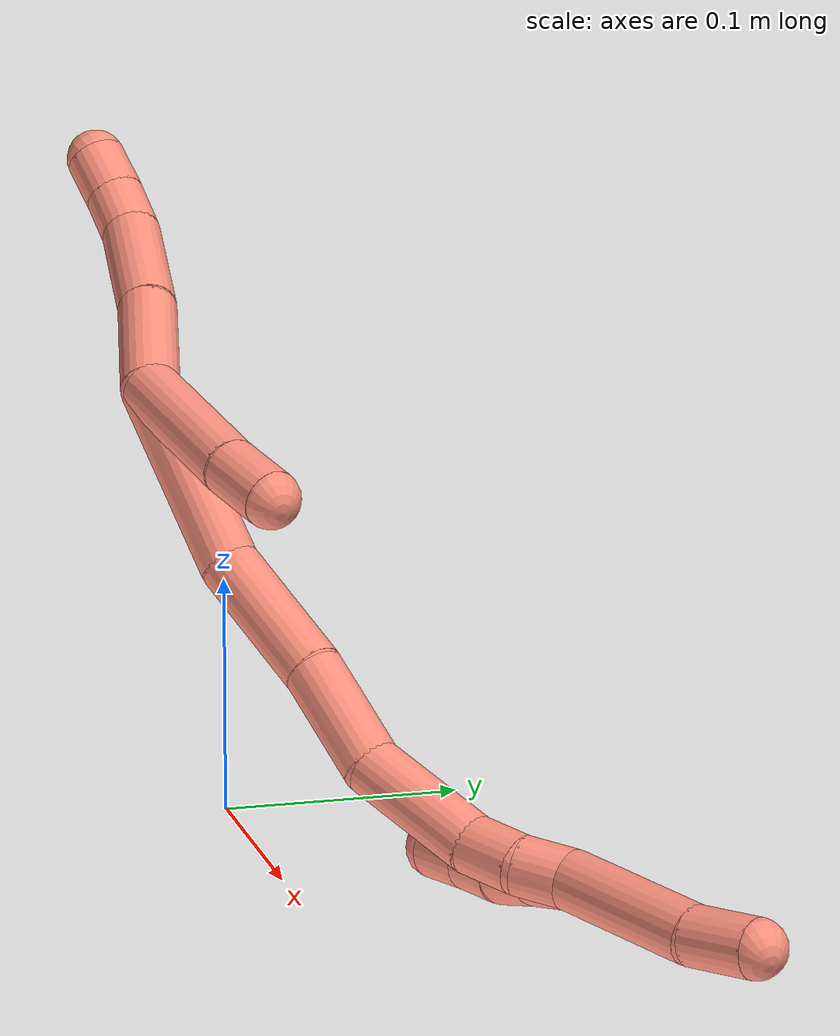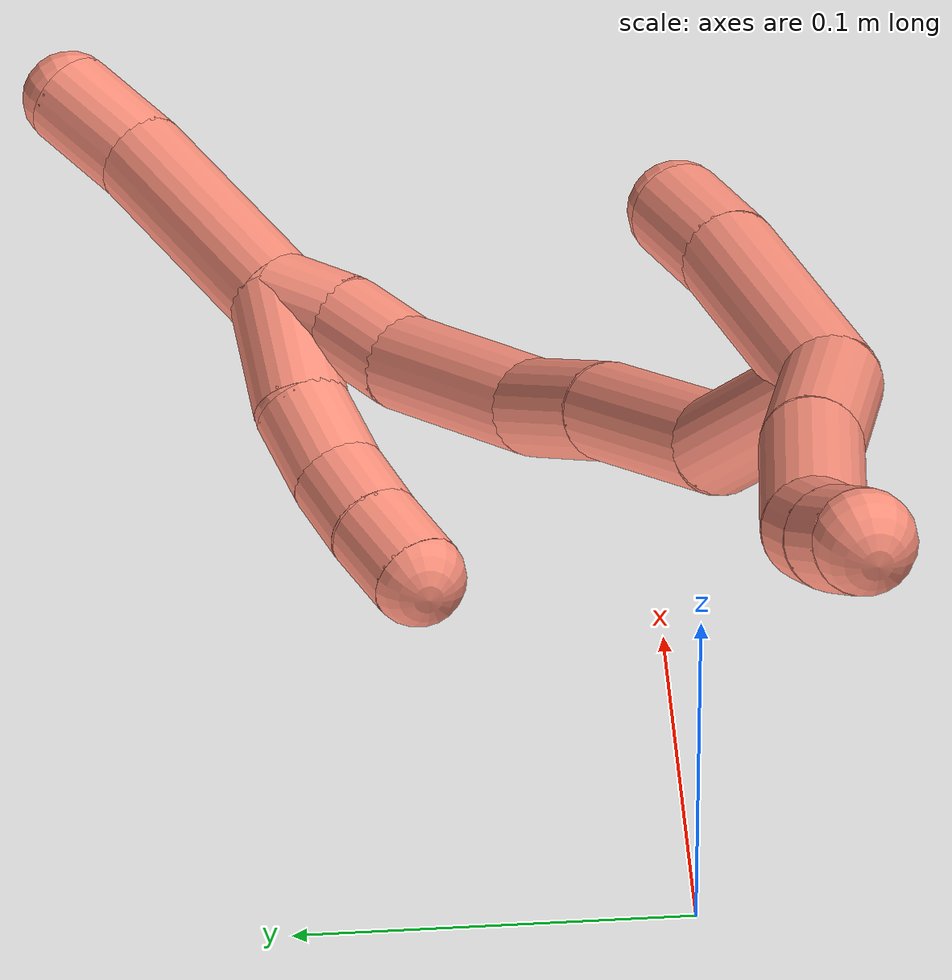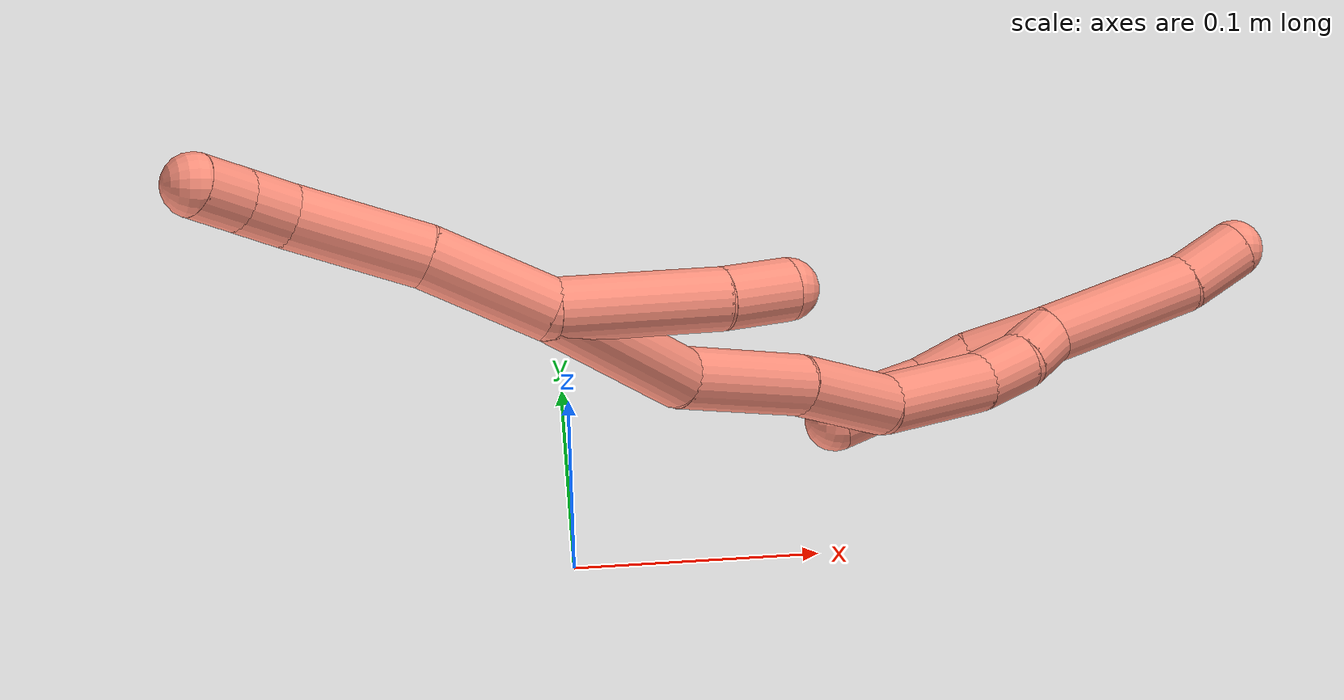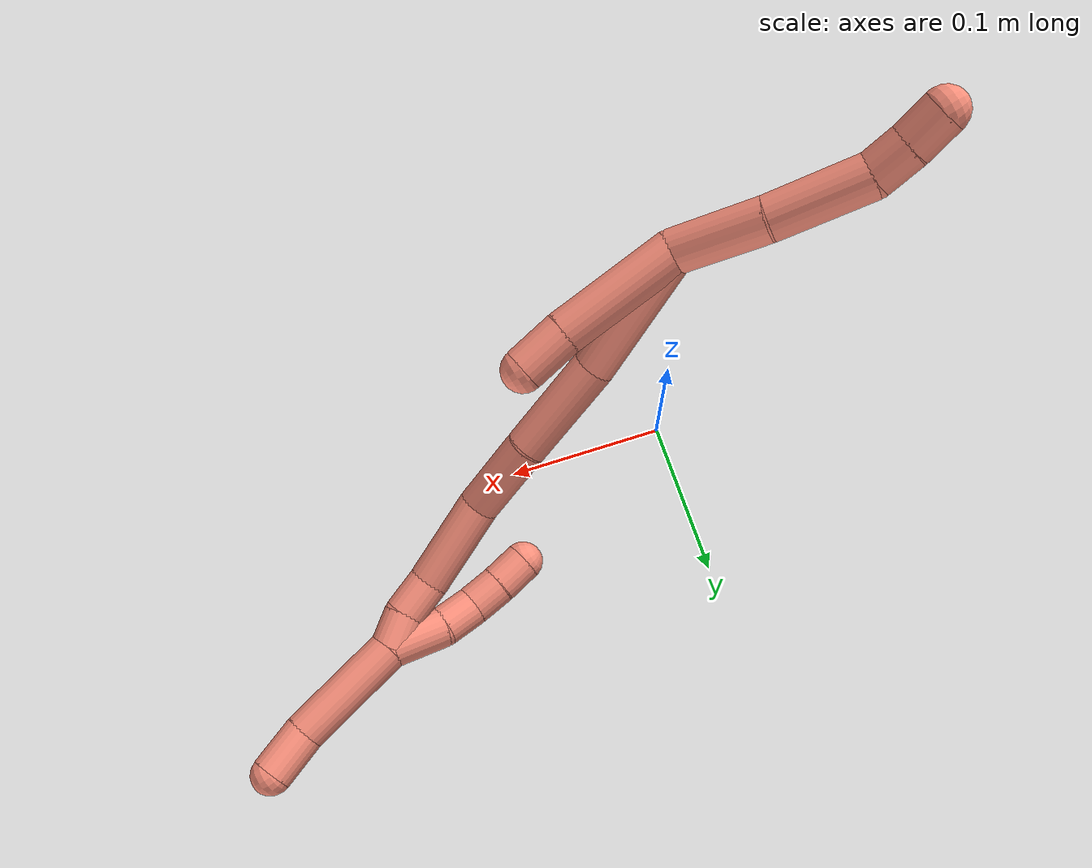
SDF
<sdf version="1.7">
 <world name="default">
  <model name="photoneo_s_sensor">
   <static>1</static>
   <pose>0 0 2 1.57079 1.57079 3.14159</pose>
   <link name="link">
    <inertial><mass>0.1</mass></inertial>
    <sensor name="sensor" type="depth">
     <update_rate>30</update_rate>
     <camera>
      <horizontal_fov>1.22</horizontal_fov>
      <image><width>1920</width><height>1200</height><format>B8G8R8</format></image>
      <clip><near>0.1</near><far>4</far></clip>
      <depth_camera><output>points</output></depth_camera>
     </camera>
     <plugin name="camera_plugin" filename="libgazebo_ros_depth_camera.so">
      <baseline>0.2</baseline>
      <alwaysOn>1</alwaysOn>
      <updateRate>0.0</updateRate>
      <cameraName>camera_ir</cameraName>
      <imageTopicName>/camera/color/image_raw</imageTopicName>
      <cameraInfoTopicName>/camera/color/camera_info</cameraInfoTopicName>
      <depthImageTopicName>/camera/depth/image_raw</depthImageTopicName>
      <depthImageCameraInfoTopicName>/camera/depth/camera_info</depthImageCameraInfoTopicName>
      <pointCloudTopicName>/camera/depth/points</pointCloudTopicName>
      <frameName>fr_optical</frameName>
      <pointCloudCutoff>0.1</pointCloudCutoff>
      <pointCloudCutoffMax>2.0</pointCloudCutoffMax>
      <distortionK1>0</distortionK1>
      <distortionK2>0</distortionK2>
      <distortionK3>0</distortionK3>
      <distortionT1>0</distortionT1>
      <distortionT2>0</distortionT2>
      <CxPrime>0</CxPrime>
      <Cx>0</Cx>
      <Cy>0</Cy>
      <focalLength>0</focalLength>
      <hackBaseline>0</hackBaseline>
     </plugin>
    </sensor>
   </link>
  </model>
  <model name="bin">
   <static>1</static>
   <link name="bottom">
    <collision name="collision-bottom">
     <pose>0 0 -0.01 0 -0 0</pose>
     <geometry><box><size>0.8 0.6 0.02</size></box></geometry>
     <surface>
      <friction><ode><mu>100</mu><mu2>100</mu2></ode></friction>
      <contact><collide_bitmask>65535</collide_bitmask></contact>
     </surface>
    </collision>
   </link>
   <link name="west_wall">
    <collision name="collision-west_wall">
     <pose>-0.41 0 0.1 0 -0 0</pose>
     <geometry><box><size>0.02 0.6 0.2</size></box></geometry>
     <surface>
      <friction><ode><mu>100</mu><mu2>100</mu2></ode></friction>
      <contact><collide_bitmask>65535</collide_bitmask></contact>
     </surface>
    </collision>
   </link>
   <link name="east_wall">
    <collision name="collision-east_wall">
     <pose>0.41 0 0.1 0 -0 0</pose>
     <geometry><box><size>0.02 0.6 0.2</size></box></geometry>
     <surface>
      <friction><ode><mu>100</mu><mu2>100</mu2></ode></friction>
      <contact><collide_bitmask>65535</collide_bitmask></contact>
     </surface>
    </collision>
   </link>
   <link name="south_wall">
    <collision name="collision-south_wall">
     <pose>0 -0.31 0.1 0 -0 0</pose>
     <geometry><box><size>0.8 0.02 0.2</size></box></geometry>
     <surface>
      <friction><ode><mu>100</mu><mu2>100</mu2></ode></friction>
      <contact><collide_bitmask>65535</collide_bitmask></contact>
     </surface>
    </collision>
   </link>
   <link name="north_wall">
    <collision name="collision-north_wall">
     <pose>0 0.31 0.1 0 -0 0</pose>
     <geometry><box><size>0.8 0.02 0.2</size></box></geometry>
     <surface>
      <friction><ode><mu>100</mu><mu2>100</mu2></ode></friction>
      <contact><collide_bitmask>65535</collide_bitmask></contact>
     </surface>
    </collision>
   </link>
  </model>
  <model name="16">
   <static>0</static>
   <link name="16">
    <collision name="collision-cylinder-e_1_2_8">
     <pose>0.010149 -0.002678 0.024028 0.110988 0.397468 0.022374</pose>
     <geometry><cylinder><radius>0.0125</radius><length>0.052441</length></cylinder></geometry>
     <surface>
      <friction><ode><mu>1.16</mu><mu2>1.16</mu2><slip1>0</slip1><slip2>0</slip2></ode></friction>
      <contact><ode><kp>1e+06</kp><kd>1</kd><max_vel>0</max_vel><min_depth>0.001</min_depth></ode></contact>
     </surface>
    </collision>
    <visual name="visual-cylinder-e_1_2_8">
     <pose>0.010149 -0.002678 0.024028 0.110988 0.397468 0.022374</pose>
     <geometry><cylinder><radius>0.0125</radius><length>0.052441</length></cylinder></geometry>
     <material><ambient>1 0.576471 0.494118 1</ambient></material>
    </visual>
    <collision name="collision-cylinder-e_2_8_9">
     <pose>0.027978 -0.007219 0.0742 0.071135 0.28501 0.010211</pose>
     <geometry><cylinder><radius>0.0125</radius><length>0.054626</length></cylinder></geometry>
     <surface>
      <friction><ode><mu>1.16</mu><mu2>1.16</mu2><slip1>0</slip1><slip2>0</slip2></ode></friction>
      <contact><ode><kp>1e+06</kp><kd>1</kd><max_vel>0</max_vel><min_depth>0.001</min_depth></ode></contact>
     </surface>
    </collision>
    <visual name="visual-cylinder-e_2_8_9">
     <pose>0.027978 -0.007219 0.0742 0.071135 0.28501 0.010211</pose>
     <geometry><cylinder><radius>0.0125</radius><length>0.054626</length></cylinder></geometry>
     <material><ambient>1 0.576471 0.494118 1</ambient></material>
    </visual>
    <collision name="collision-cylinder-e_3_9_10">
     <pose>0.036936 -0.012905 0.110365 0.364519 0.118611 0.021885</pose>
     <geometry><cylinder><radius>0.0125</radius><length>0.021601</length></cylinder></geometry>
     <surface>
      <friction><ode><mu>1.16</mu><mu2>1.16</mu2><slip1>0</slip1><slip2>0</slip2></ode></friction>
      <contact><ode><kp>1e+06</kp><kd>1</kd><max_vel>0</max_vel><min_depth>0.001</min_depth></ode></contact>
     </surface>
    </collision>
    <visual name="visual-cylinder-e_3_9_10">
     <pose>0.036936 -0.012905 0.110365 0.364519 0.118611 0.021885</pose>
     <geometry><cylinder><radius>0.0125</radius><length>0.021601</length></cylinder></geometry>
     <material><ambient>1 0.576471 0.494118 1</ambient></material>
    </visual>
    <collision name="collision-cylinder-e_4_10_6">
     <pose>0.038804 -0.02132 0.129994 0.445742 0.055299 0.012536</pose>
     <geometry><cylinder><radius>0.0125</radius><length>0.021332</length></cylinder></geometry>
     <surface>
      <friction><ode><mu>1.16</mu><mu2>1.16</mu2><slip1>0</slip1><slip2>0</slip2></ode></friction>
      <contact><ode><kp>1e+06</kp><kd>1</kd><max_vel>0</max_vel><min_depth>0.001</min_depth></ode></contact>
     </surface>
    </collision>
    <visual name="visual-cylinder-e_4_10_6">
     <pose>0.038804 -0.02132 0.129994 0.445742 0.055299 0.012536</pose>
     <geometry><cylinder><radius>0.0125</radius><length>0.021332</length></cylinder></geometry>
     <material><ambient>1 0.576471 0.494118 1</ambient></material>
    </visual>
    <collision name="collision-cylinder-e_1_2_11">
     <pose>0.002824 0.001258 -0.035359 -3.10602 0.079646 -2.30182</pose>
     <geometry><cylinder><radius>0.0125</radius><length>0.070988</length></cylinder></geometry>
     <surface>
      <friction><ode><mu>1.16</mu><mu2>1.16</mu2><slip1>0</slip1><slip2>0</slip2></ode></friction>
      <contact><ode><kp>1e+06</kp><kd>1</kd><max_vel>0</max_vel><min_depth>0.001</min_depth></ode></contact>
     </surface>
    </collision>
    <visual name="visual-cylinder-e_1_2_11">
     <pose>0.002824 0.001258 -0.035359 -3.10602 0.079646 -2.30182</pose>
     <geometry><cylinder><radius>0.0125</radius><length>0.070988</length></cylinder></geometry>
     <material><ambient>1 0.576471 0.494118 1</ambient></material>
    </visual>
    <collision name="collision-cylinder-e_2_11_5">
     <pose>0.008192 0.003591 -0.084959 -3.06629 0.176275 -2.33564</pose>
     <geometry><cylinder><radius>0.0125</radius><length>0.029012</length></cylinder></geometry>
     <surface>
      <friction><ode><mu>1.16</mu><mu2>1.16</mu2><slip1>0</slip1><slip2>0</slip2></ode></friction>
      <contact><ode><kp>1e+06</kp><kd>1</kd><max_vel>0</max_vel><min_depth>0.001</min_depth></ode></contact>
     </surface>
    </collision>
    <visual name="visual-cylinder-e_2_11_5">
     <pose>0.008192 0.003591 -0.084959 -3.06629 0.176275 -2.33564</pose>
     <geometry><cylinder><radius>0.0125</radius><length>0.029012</length></cylinder></geometry>
     <material><ambient>1 0.576471 0.494118 1</ambient></material>
    </visual>
    <collision name="collision-cylinder-e_1_2_12">
     <pose>-0.002001 0.025242 -0.03325 -2.49225 -0.047907 0.14212</pose>
     <geometry><cylinder><radius>0.0125</radius><length>0.083588</length></cylinder></geometry>
     <surface>
      <friction><ode><mu>1.16</mu><mu2>1.16</mu2><slip1>0</slip1><slip2>0</slip2></ode></friction>
      <contact><ode><kp>1e+06</kp><kd>1</kd><max_vel>0</max_vel><min_depth>0.001</min_depth></ode></contact>
     </surface>
    </collision>
    <visual name="visual-cylinder-e_1_2_12">
     <pose>-0.002001 0.025242 -0.03325 -2.49225 -0.047907 0.14212</pose>
     <geometry><cylinder><radius>0.0125</radius><length>0.083588</length></cylinder></geometry>
     <material><ambient>1 0.576471 0.494118 1</ambient></material>
    </visual>
    <collision name="collision-cylinder-e_2_12_13">
     <pose>-0.000546 0.06155 -0.095905 -2.78169 0.109592 -0.585682</pose>
     <geometry><cylinder><radius>0.0125</radius><length>0.063216</length></cylinder></geometry>
     <surface>
      <friction><ode><mu>1.16</mu><mu2>1.16</mu2><slip1>0</slip1><slip2>0</slip2></ode></friction>
      <contact><ode><kp>1e+06</kp><kd>1</kd><max_vel>0</max_vel><min_depth>0.001</min_depth></ode></contact>
     </surface>
    </collision>
    <visual name="visual-cylinder-e_2_12_13">
     <pose>-0.000546 0.06155 -0.095905 -2.78169 0.109592 -0.585682</pose>
     <geometry><cylinder><radius>0.0125</radius><length>0.063216</length></cylinder></geometry>
     <material><ambient>1 0.576471 0.494118 1</ambient></material>
    </visual>
    <collision name="collision-cylinder-e_3_13_14">
     <pose>0.003625 0.083679 -0.147573 -2.68038 0.028707 -0.122128</pose>
     <geometry><cylinder><radius>0.0125</radius><length>0.04974</length></cylinder></geometry>
     <surface>
      <friction><ode><mu>1.16</mu><mu2>1.16</mu2><slip1>0</slip1><slip2>0</slip2></ode></friction>
      <contact><ode><kp>1e+06</kp><kd>1</kd><max_vel>0</max_vel><min_depth>0.001</min_depth></ode></contact>
     </surface>
    </collision>
    <visual name="visual-cylinder-e_3_13_14">
     <pose>0.003625 0.083679 -0.147573 -2.68038 0.028707 -0.122128</pose>
     <geometry><cylinder><radius>0.0125</radius><length>0.04974</length></cylinder></geometry>
     <material><ambient>1 0.576471 0.494118 1</ambient></material>
    </visual>
    <collision name="collision-cylinder-e_4_14_15">
     <pose>0.013147 0.102862 -0.195674 -2.8371 0.314427 -1.60342</pose>
     <geometry><cylinder><radius>0.0125</radius><length>0.056961</length></cylinder></geometry>
     <surface>
      <friction><ode><mu>1.16</mu><mu2>1.16</mu2><slip1>0</slip1><slip2>0</slip2></ode></friction>
      <contact><ode><kp>1e+06</kp><kd>1</kd><max_vel>0</max_vel><min_depth>0.001</min_depth></ode></contact>
     </surface>
    </collision>
    <visual name="visual-cylinder-e_4_14_15">
     <pose>0.013147 0.102862 -0.195674 -2.8371 0.314427 -1.60342</pose>
     <geometry><cylinder><radius>0.0125</radius><length>0.056961</length></cylinder></geometry>
     <material><ambient>1 0.576471 0.494118 1</ambient></material>
    </visual>
    <collision name="collision-cylinder-e_5_15_16">
     <pose>0.027084 0.111651 -0.23267 -3.08171 0.430189 -2.86911</pose>
     <geometry><cylinder><radius>0.0125</radius><length>0.024595</length></cylinder></geometry>
     <surface>
      <friction><ode><mu>1.16</mu><mu2>1.16</mu2><slip1>0</slip1><slip2>0</slip2></ode></friction>
      <contact><ode><kp>1e+06</kp><kd>1</kd><max_vel>0</max_vel><min_depth>0.001</min_depth></ode></contact>
     </surface>
    </collision>
    <visual name="visual-cylinder-e_5_15_16">
     <pose>0.027084 0.111651 -0.23267 -3.08171 0.430189 -2.86911</pose>
     <geometry><cylinder><radius>0.0125</radius><length>0.024595</length></cylinder></geometry>
     <material><ambient>1 0.576471 0.494118 1</ambient></material>
    </visual>
    <collision name="collision-cylinder-e_6_16_1">
     <pose>0.039074 0.113972 -0.252198 -2.94683 0.677291 -2.60046</pose>
     <geometry><cylinder><radius>0.0125</radius><length>0.021899</length></cylinder></geometry>
     <surface>
      <friction><ode><mu>1.16</mu><mu2>1.16</mu2><slip1>0</slip1><slip2>0</slip2></ode></friction>
      <contact><ode><kp>1e+06</kp><kd>1</kd><max_vel>0</max_vel><min_depth>0.001</min_depth></ode></contact>
     </surface>
    </collision>
    <visual name="visual-cylinder-e_6_16_1">
     <pose>0.039074 0.113972 -0.252198 -2.94683 0.677291 -2.60046</pose>
     <geometry><cylinder><radius>0.0125</radius><length>0.021899</length></cylinder></geometry>
     <material><ambient>1 0.576471 0.494118 1</ambient></material>
    </visual>
    <collision name="collision-cylinder-e_1_1_17">
     <pose>0.057025 0.11358 -0.29371 3.08003 0.322332 2.76724</pose>
     <geometry><cylinder><radius>0.0125</radius><length>0.070012</length></cylinder></geometry>
     <surface>
      <friction><ode><mu>1.16</mu><mu2>1.16</mu2><slip1>0</slip1><slip2>0</slip2></ode></friction>
      <contact><ode><kp>1e+06</kp><kd>1</kd><max_vel>0</max_vel><min_depth>0.001</min_depth></ode></contact>
     </surface>
    </collision>
    <visual name="visual-cylinder-e_1_1_17">
     <pose>0.057025 0.11358 -0.29371 3.08003 0.322332 2.76724</pose>
     <geometry><cylinder><radius>0.0125</radius><length>0.070012</length></cylinder></geometry>
     <material><ambient>1 0.576471 0.494118 1</ambient></material>
    </visual>
    <collision name="collision-cylinder-e_2_17_4">
     <pose>0.075561 0.110028 -0.339776 3.02536 0.519729 2.71071</pose>
     <geometry><cylinder><radius>0.0125</radius><length>0.029988</length></cylinder></geometry>
     <surface>
      <friction><ode><mu>1.16</mu><mu2>1.16</mu2><slip1>0</slip1><slip2>0</slip2></ode></friction>
      <contact><ode><kp>1e+06</kp><kd>1</kd><max_vel>0</max_vel><min_depth>0.001</min_depth></ode></contact>
     </surface>
    </collision>
    <visual name="visual-cylinder-e_2_17_4">
     <pose>0.075561 0.110028 -0.339776 3.02536 0.519729 2.71071</pose>
     <geometry><cylinder><radius>0.0125</radius><length>0.029988</length></cylinder></geometry>
     <material><ambient>1 0.576471 0.494118 1</ambient></material>
    </visual>
    <collision name="collision-cylinder-e_1_1_18">
     <pose>0.044123 0.123646 -0.245472 -0.488465 -0.10568 0.026359</pose>
     <geometry><cylinder><radius>0.0125</radius><length>0.034385</length></cylinder></geometry>
     <surface>
      <friction><ode><mu>1.16</mu><mu2>1.16</mu2><slip1>0</slip1><slip2>0</slip2></ode></friction>
      <contact><ode><kp>1e+06</kp><kd>1</kd><max_vel>0</max_vel><min_depth>0.001</min_depth></ode></contact>
     </surface>
    </collision>
    <visual name="visual-cylinder-e_1_1_18">
     <pose>0.044123 0.123646 -0.245472 -0.488465 -0.10568 0.026359</pose>
     <geometry><cylinder><radius>0.0125</radius><length>0.034385</length></cylinder></geometry>
     <material><ambient>1 0.576471 0.494118 1</ambient></material>
    </visual>
    <collision name="collision-cylinder-e_2_18_19">
     <pose>0.038595 0.135987 -0.220398 -0.408482 -0.329202 0.068783</pose>
     <geometry><cylinder><radius>0.0125</radius><length>0.022977</length></cylinder></geometry>
     <surface>
      <friction><ode><mu>1.16</mu><mu2>1.16</mu2><slip1>0</slip1><slip2>0</slip2></ode></friction>
      <contact><ode><kp>1e+06</kp><kd>1</kd><max_vel>0</max_vel><min_depth>0.001</min_depth></ode></contact>
     </surface>
    </collision>
    <visual name="visual-cylinder-e_2_18_19">
     <pose>0.038595 0.135987 -0.220398 -0.408482 -0.329202 0.068783</pose>
     <geometry><cylinder><radius>0.0125</radius><length>0.022977</length></cylinder></geometry>
     <material><ambient>1 0.576471 0.494118 1</ambient></material>
    </visual>
    <collision name="collision-cylinder-e_3_19_20">
     <pose>0.03206 0.141885 -0.200344 -0.155421 -0.269794 0.021136</pose>
     <geometry><cylinder><radius>0.0125</radius><length>0.021164</length></cylinder></geometry>
     <surface>
      <friction><ode><mu>1.16</mu><mu2>1.16</mu2><slip1>0</slip1><slip2>0</slip2></ode></friction>
      <contact><ode><kp>1e+06</kp><kd>1</kd><max_vel>0</max_vel><min_depth>0.001</min_depth></ode></contact>
     </surface>
    </collision>
    <visual name="visual-cylinder-e_3_19_20">
     <pose>0.03206 0.141885 -0.200344 -0.155421 -0.269794 0.021136</pose>
     <geometry><cylinder><radius>0.0125</radius><length>0.021164</length></cylinder></geometry>
     <material><ambient>1 0.576471 0.494118 1</ambient></material>
    </visual>
    <collision name="collision-cylinder-e_4_20_3">
     <pose>0.025624 0.14488 -0.180258 -0.1406 -0.343486 0.024426</pose>
     <geometry><cylinder><radius>0.0125</radius><length>0.021473</length></cylinder></geometry>
     <surface>
      <friction><ode><mu>1.16</mu><mu2>1.16</mu2><slip1>0</slip1><slip2>0</slip2></ode></friction>
      <contact><ode><kp>1e+06</kp><kd>1</kd><max_vel>0</max_vel><min_depth>0.001</min_depth></ode></contact>
     </surface>
    </collision>
    <visual name="visual-cylinder-e_4_20_3">
     <pose>0.025624 0.14488 -0.180258 -0.1406 -0.343486 0.024426</pose>
     <geometry><cylinder><radius>0.0125</radius><length>0.021473</length></cylinder></geometry>
     <material><ambient>1 0.576471 0.494118 1</ambient></material>
    </visual>
    <collision name="collision-sphere-3">
     <pose>0.022008 0.146297 -0.170248 0 -0 0</pose>
     <geometry><sphere><radius>0.0125</radius></sphere></geometry>
     <surface>
      <friction><ode><mu>1.16</mu><mu2>1.16</mu2><slip1>0</slip1><slip2>0</slip2></ode></friction>
      <contact><ode><kp>1e+06</kp><kd>1</kd><max_vel>0</max_vel><min_depth>0.001</min_depth></ode></contact>
     </surface>
    </collision>
    <visual name="visual-sphere-3">
     <pose>0.022008 0.146297 -0.170248 0 -0 0</pose>
     <geometry><sphere><radius>0.0125</radius></sphere></geometry>
     <material><ambient>1 0.576471 0.494118 1</ambient></material>
    </visual>
    <collision name="collision-sphere-20">
     <pose>0.02924 0.143463 -0.190267 0 -0 0</pose>
     <geometry><sphere><radius>0.0125</radius></sphere></geometry>
     <surface>
      <friction><ode><mu>1.16</mu><mu2>1.16</mu2><slip1>0</slip1><slip2>0</slip2></ode></friction>
      <contact><ode><kp>1e+06</kp><kd>1</kd><max_vel>0</max_vel><min_depth>0.001</min_depth></ode></contact>
     </surface>
    </collision>
    <visual name="visual-sphere-20">
     <pose>0.02924 0.143463 -0.190267 0 -0 0</pose>
     <geometry><sphere><radius>0.0125</radius></sphere></geometry>
     <material><ambient>1 0.576471 0.494118 1</ambient></material>
    </visual>
    <collision name="collision-sphere-19">
     <pose>0.034881 0.140306 -0.21042 0 -0 0</pose>
     <geometry><sphere><radius>0.0125</radius></sphere></geometry>
     <surface>
      <friction><ode><mu>1.16</mu><mu2>1.16</mu2><slip1>0</slip1><slip2>0</slip2></ode></friction>
      <contact><ode><kp>1e+06</kp><kd>1</kd><max_vel>0</max_vel><min_depth>0.001</min_depth></ode></contact>
     </surface>
    </collision>
    <visual name="visual-sphere-19">
     <pose>0.034881 0.140306 -0.21042 0 -0 0</pose>
     <geometry><sphere><radius>0.0125</radius></sphere></geometry>
     <material><ambient>1 0.576471 0.494118 1</ambient></material>
    </visual>
    <collision name="collision-sphere-11">
     <pose>0.005648 0.002517 -0.070718 0 -0 0</pose>
     <geometry><sphere><radius>0.0125</radius></sphere></geometry>
     <surface>
      <friction><ode><mu>1.16</mu><mu2>1.16</mu2><slip1>0</slip1><slip2>0</slip2></ode></friction>
      <contact><ode><kp>1e+06</kp><kd>1</kd><max_vel>0</max_vel><min_depth>0.001</min_depth></ode></contact>
     </surface>
    </collision>
    <visual name="visual-sphere-11">
     <pose>0.005648 0.002517 -0.070718 0 -0 0</pose>
     <geometry><sphere><radius>0.0125</radius></sphere></geometry>
     <material><ambient>1 0.576471 0.494118 1</ambient></material>
    </visual>
    <collision name="collision-sphere-6">
     <pose>0.039393 -0.025911 0.139603 0 -0 0</pose>
     <geometry><sphere><radius>0.0125</radius></sphere></geometry>
     <surface>
      <friction><ode><mu>1.16</mu><mu2>1.16</mu2><slip1>0</slip1><slip2>0</slip2></ode></friction>
      <contact><ode><kp>1e+06</kp><kd>1</kd><max_vel>0</max_vel><min_depth>0.001</min_depth></ode></contact>
     </surface>
    </collision>
    <visual name="visual-sphere-6">
     <pose>0.039393 -0.025911 0.139603 0 -0 0</pose>
     <geometry><sphere><radius>0.0125</radius></sphere></geometry>
     <material><ambient>1 0.576471 0.494118 1</ambient></material>
    </visual>
    <collision name="collision-sphere-10">
     <pose>0.038214 -0.016728 0.120385 0 -0 0</pose>
     <geometry><sphere><radius>0.0125</radius></sphere></geometry>
     <surface>
      <friction><ode><mu>1.16</mu><mu2>1.16</mu2><slip1>0</slip1><slip2>0</slip2></ode></friction>
      <contact><ode><kp>1e+06</kp><kd>1</kd><max_vel>0</max_vel><min_depth>0.001</min_depth></ode></contact>
     </surface>
    </collision>
    <visual name="visual-sphere-10">
     <pose>0.038214 -0.016728 0.120385 0 -0 0</pose>
     <geometry><sphere><radius>0.0125</radius></sphere></geometry>
     <material><ambient>1 0.576471 0.494118 1</ambient></material>
    </visual>
    <collision name="collision-sphere-9">
     <pose>0.035658 -0.009081 0.100345 0 -0 0</pose>
     <geometry><sphere><radius>0.0125</radius></sphere></geometry>
     <surface>
      <friction><ode><mu>1.16</mu><mu2>1.16</mu2><slip1>0</slip1><slip2>0</slip2></ode></friction>
      <contact><ode><kp>1e+06</kp><kd>1</kd><max_vel>0</max_vel><min_depth>0.001</min_depth></ode></contact>
     </surface>
    </collision>
    <visual name="visual-sphere-9">
     <pose>0.035658 -0.009081 0.100345 0 -0 0</pose>
     <geometry><sphere><radius>0.0125</radius></sphere></geometry>
     <material><ambient>1 0.576471 0.494118 1</ambient></material>
    </visual>
    <collision name="collision-sphere-2">
     <geometry><sphere><radius>0.0125</radius></sphere></geometry>
     <surface>
      <friction><ode><mu>1.16</mu><mu2>1.16</mu2><slip1>0</slip1><slip2>0</slip2></ode></friction>
      <contact><ode><kp>1e+06</kp><kd>1</kd><max_vel>0</max_vel><min_depth>0.001</min_depth></ode></contact>
     </surface>
    </collision>
    <visual name="visual-sphere-2">
     <geometry><sphere><radius>0.0125</radius></sphere></geometry>
     <material><ambient>1 0.576471 0.494118 1</ambient></material>
    </visual>
    <collision name="collision-sphere-8">
     <pose>0.020299 -0.005356 0.048055 0 -0 0</pose>
     <geometry><sphere><radius>0.0125</radius></sphere></geometry>
     <surface>
      <friction><ode><mu>1.16</mu><mu2>1.16</mu2><slip1>0</slip1><slip2>0</slip2></ode></friction>
      <contact><ode><kp>1e+06</kp><kd>1</kd><max_vel>0</max_vel><min_depth>0.001</min_depth></ode></contact>
     </surface>
    </collision>
    <visual name="visual-sphere-8">
     <pose>0.020299 -0.005356 0.048055 0 -0 0</pose>
     <geometry><sphere><radius>0.0125</radius></sphere></geometry>
     <material><ambient>1 0.576471 0.494118 1</ambient></material>
    </visual>
    <collision name="collision-sphere-5">
     <pose>0.010736 0.004666 -0.0992 0 -0 0</pose>
     <geometry><sphere><radius>0.0125</radius></sphere></geometry>
     <surface>
      <friction><ode><mu>1.16</mu><mu2>1.16</mu2><slip1>0</slip1><slip2>0</slip2></ode></friction>
      <contact><ode><kp>1e+06</kp><kd>1</kd><max_vel>0</max_vel><min_depth>0.001</min_depth></ode></contact>
     </surface>
    </collision>
    <visual name="visual-sphere-5">
     <pose>0.010736 0.004666 -0.0992 0 -0 0</pose>
     <geometry><sphere><radius>0.0125</radius></sphere></geometry>
     <material><ambient>1 0.576471 0.494118 1</ambient></material>
    </visual>
    <collision name="collision-sphere-12">
     <pose>-0.004003 0.050485 -0.0665 0 -0 0</pose>
     <geometry><sphere><radius>0.0125</radius></sphere></geometry>
     <surface>
      <friction><ode><mu>1.16</mu><mu2>1.16</mu2><slip1>0</slip1><slip2>0</slip2></ode></friction>
      <contact><ode><kp>1e+06</kp><kd>1</kd><max_vel>0</max_vel><min_depth>0.001</min_depth></ode></contact>
     </surface>
    </collision>
    <visual name="visual-sphere-12">
     <pose>-0.004003 0.050485 -0.0665 0 -0 0</pose>
     <geometry><sphere><radius>0.0125</radius></sphere></geometry>
     <material><ambient>1 0.576471 0.494118 1</ambient></material>
    </visual>
    <collision name="collision-sphere-13">
     <pose>0.002911 0.072615 -0.125311 0 -0 0</pose>
     <geometry><sphere><radius>0.0125</radius></sphere></geometry>
     <surface>
      <friction><ode><mu>1.16</mu><mu2>1.16</mu2><slip1>0</slip1><slip2>0</slip2></ode></friction>
      <contact><ode><kp>1e+06</kp><kd>1</kd><max_vel>0</max_vel><min_depth>0.001</min_depth></ode></contact>
     </surface>
    </collision>
    <visual name="visual-sphere-13">
     <pose>0.002911 0.072615 -0.125311 0 -0 0</pose>
     <geometry><sphere><radius>0.0125</radius></sphere></geometry>
     <material><ambient>1 0.576471 0.494118 1</ambient></material>
    </visual>
    <collision name="collision-sphere-14">
     <pose>0.004339 0.094742 -0.169836 0 -0 0</pose>
     <geometry><sphere><radius>0.0125</radius></sphere></geometry>
     <surface>
      <friction><ode><mu>1.16</mu><mu2>1.16</mu2><slip1>0</slip1><slip2>0</slip2></ode></friction>
      <contact><ode><kp>1e+06</kp><kd>1</kd><max_vel>0</max_vel><min_depth>0.001</min_depth></ode></contact>
     </surface>
    </collision>
    <visual name="visual-sphere-14">
     <pose>0.004339 0.094742 -0.169836 0 -0 0</pose>
     <geometry><sphere><radius>0.0125</radius></sphere></geometry>
     <material><ambient>1 0.576471 0.494118 1</ambient></material>
    </visual>
    <collision name="collision-sphere-15">
     <pose>0.021955 0.110982 -0.221513 0 -0 0</pose>
     <geometry><sphere><radius>0.0125</radius></sphere></geometry>
     <surface>
      <friction><ode><mu>1.16</mu><mu2>1.16</mu2><slip1>0</slip1><slip2>0</slip2></ode></friction>
      <contact><ode><kp>1e+06</kp><kd>1</kd><max_vel>0</max_vel><min_depth>0.001</min_depth></ode></contact>
     </surface>
    </collision>
    <visual name="visual-sphere-15">
     <pose>0.021955 0.110982 -0.221513 0 -0 0</pose>
     <geometry><sphere><radius>0.0125</radius></sphere></geometry>
     <material><ambient>1 0.576471 0.494118 1</ambient></material>
    </visual>
    <collision name="collision-sphere-16">
     <pose>0.032213 0.11232 -0.243827 0 -0 0</pose>
     <geometry><sphere><radius>0.0125</radius></sphere></geometry>
     <surface>
      <friction><ode><mu>1.16</mu><mu2>1.16</mu2><slip1>0</slip1><slip2>0</slip2></ode></friction>
      <contact><ode><kp>1e+06</kp><kd>1</kd><max_vel>0</max_vel><min_depth>0.001</min_depth></ode></contact>
     </surface>
    </collision>
    <visual name="visual-sphere-16">
     <pose>0.032213 0.11232 -0.243827 0 -0 0</pose>
     <geometry><sphere><radius>0.0125</radius></sphere></geometry>
     <material><ambient>1 0.576471 0.494118 1</ambient></material>
    </visual>
    <collision name="collision-sphere-1">
     <pose>0.045936 0.115623 -0.260569 0 -0 0</pose>
     <geometry><sphere><radius>0.0125</radius></sphere></geometry>
     <surface>
      <friction><ode><mu>1.16</mu><mu2>1.16</mu2><slip1>0</slip1><slip2>0</slip2></ode></friction>
      <contact><ode><kp>1e+06</kp><kd>1</kd><max_vel>0</max_vel><min_depth>0.001</min_depth></ode></contact>
     </surface>
    </collision>
    <visual name="visual-sphere-1">
     <pose>0.045936 0.115623 -0.260569 0 -0 0</pose>
     <geometry><sphere><radius>0.0125</radius></sphere></geometry>
     <material><ambient>1 0.576471 0.494118 1</ambient></material>
    </visual>
    <collision name="collision-sphere-18">
     <pose>0.042309 0.131669 -0.230375 0 -0 0</pose>
     <geometry><sphere><radius>0.0125</radius></sphere></geometry>
     <surface>
      <friction><ode><mu>1.16</mu><mu2>1.16</mu2><slip1>0</slip1><slip2>0</slip2></ode></friction>
      <contact><ode><kp>1e+06</kp><kd>1</kd><max_vel>0</max_vel><min_depth>0.001</min_depth></ode></contact>
     </surface>
    </collision>
    <visual name="visual-sphere-18">
     <pose>0.042309 0.131669 -0.230375 0 -0 0</pose>
     <geometry><sphere><radius>0.0125</radius></sphere></geometry>
     <material><ambient>1 0.576471 0.494118 1</ambient></material>
    </visual>
    <collision name="collision-sphere-17">
     <pose>0.068115 0.111538 -0.32685 0 -0 0</pose>
     <geometry><sphere><radius>0.0125</radius></sphere></geometry>
     <surface>
      <friction><ode><mu>1.16</mu><mu2>1.16</mu2><slip1>0</slip1><slip2>0</slip2></ode></friction>
      <contact><ode><kp>1e+06</kp><kd>1</kd><max_vel>0</max_vel><min_depth>0.001</min_depth></ode></contact>
     </surface>
    </collision>
    <visual name="visual-sphere-17">
     <pose>0.068115 0.111538 -0.32685 0 -0 0</pose>
     <geometry><sphere><radius>0.0125</radius></sphere></geometry>
     <material><ambient>1 0.576471 0.494118 1</ambient></material>
    </visual>
    <collision name="collision-sphere-4">
     <pose>0.083008 0.108519 -0.352702 0 -0 0</pose>
     <geometry><sphere><radius>0.0125</radius></sphere></geometry>
     <surface>
      <friction><ode><mu>1.16</mu><mu2>1.16</mu2><slip1>0</slip1><slip2>0</slip2></ode></friction>
      <contact><ode><kp>1e+06</kp><kd>1</kd><max_vel>0</max_vel><min_depth>0.001</min_depth></ode></contact>
     </surface>
    </collision>
    <visual name="visual-sphere-4">
     <pose>0.083008 0.108519 -0.352702 0 -0 0</pose>
     <geometry><sphere><radius>0.0125</radius></sphere></geometry>
     <material><ambient>1 0.576471 0.494118 1</ambient></material>
    </visual>
    <inertial>
     <pose>0.021686 0.059908 -0.113928 0 -0 0</pose>
     <mass>0.75</mass>
     <inertia><ixx>3.6e-05</ixx><ixy>0</ixy><ixz>0</ixz><iyy>6e-06</iyy><iyz>0</iyz><izz>-9.7e-05</izz></inertia>
    </inertial>
   </link>
   <pose>-0.005727 -0.029374 0.18229 -1.30754 -0.317646 1.66754</pose>
  </model>
 </world>
</sdf>
